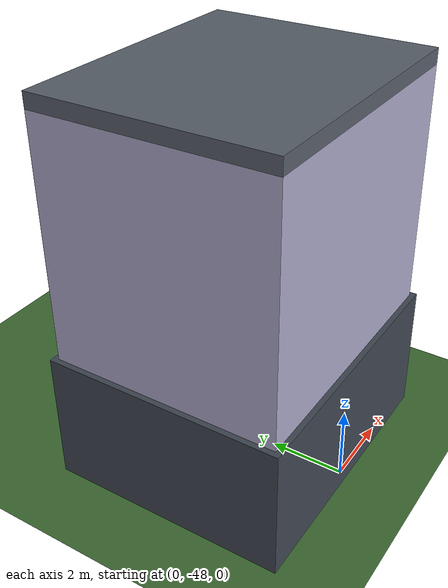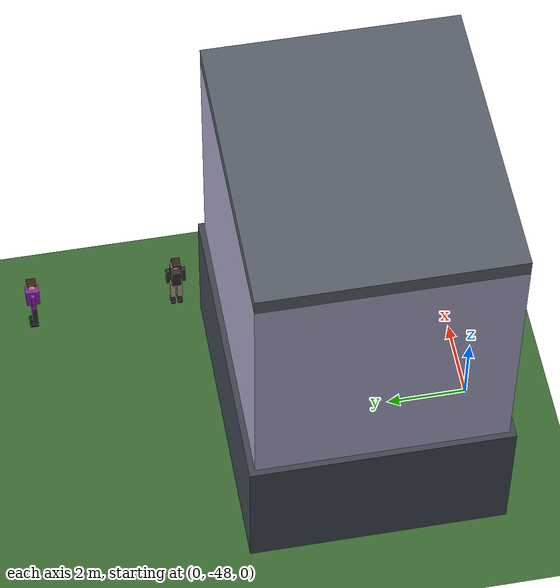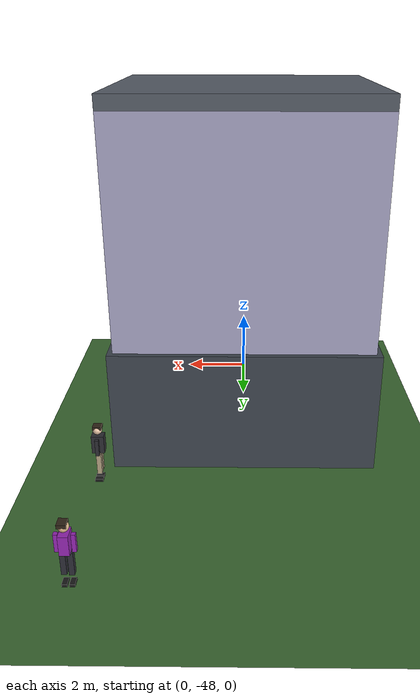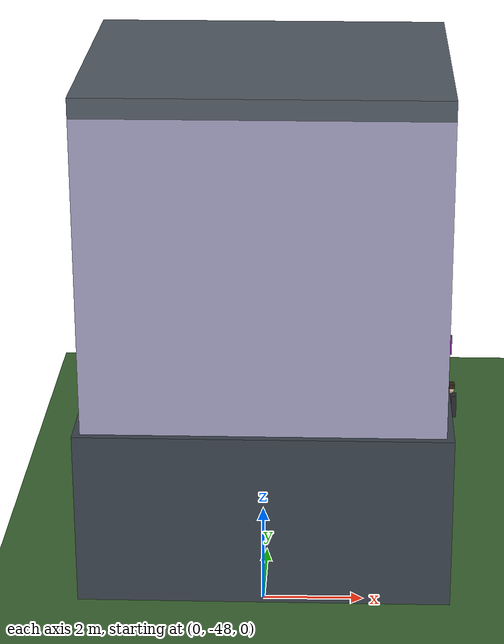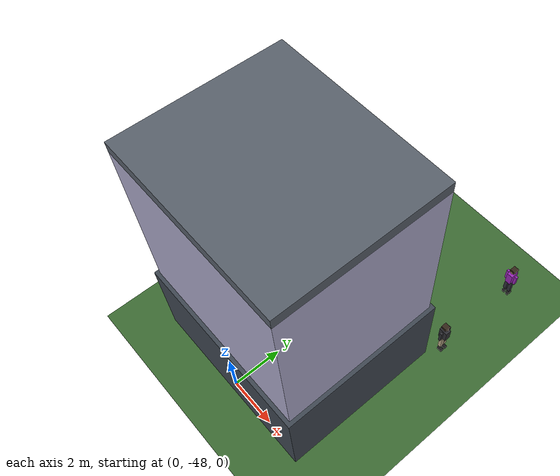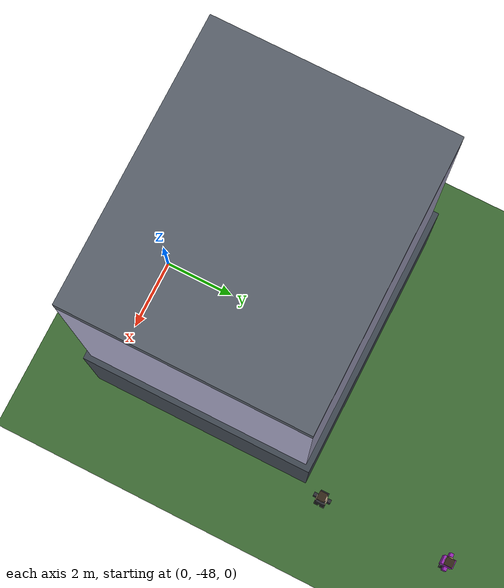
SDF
<sdf version="1.7">
 <world name="city_world">
  <model name="ground_plane">
   <static>true</static>
   <link name="link">
    <collision name="collision">
     <geometry><plane><normal>0 0 1</normal><size>300 300</size></plane></geometry>
     <surface><friction><ode><mu>100</mu><mu2>50</mu2></ode></friction></surface>
    </collision>
    <visual name="visual">
     <geometry><plane><normal>0 0 1</normal><size>300 300</size></plane></geometry>
     <material><ambient>0.24 0.42 0.20 1</ambient><diffuse>0.24 0.42 0.20 1</diffuse></material>
    </visual>
   </link>
  </model>
  <model name="pedestrian_4">
   <pose>4.0 -37.5 0.02 0 0 1.5708</pose>
   <static>true</static>
   <link name="link">
    <visual name="head">
     <pose>0 0 1.62 0 0 0</pose>
     <geometry><sphere><radius>0.13</radius></sphere></geometry>
     <material><ambient>0.88 0.72 0.55 1</ambient><diffuse>0.88 0.72 0.55 1</diffuse></material>
    </visual>
    <visual name="cap">
     <pose>0 -0.02 1.70 0 0 0</pose>
     <geometry><box><size>0.24 0.22 0.10</size></box></geometry>
     <material><ambient>0.2 0.15 0.1 1</ambient><diffuse>0.2 0.15 0.1 1</diffuse></material>
    </visual>
    <visual name="torso">
     <pose>0 0 1.20 0 0 0</pose>
     <geometry><box><size>0.34 0.24 0.52</size></box></geometry>
     <material><ambient>0.60 0.15 0.72 1</ambient><diffuse>0.60 0.15 0.72 1</diffuse></material>
    </visual>
    <visual name="arm_l">
     <pose>0 0.20 1.18 0 0 0</pose>
     <geometry><box><size>0.10 0.10 0.48</size></box></geometry>
     <material><ambient>0.60 0.15 0.72 1</ambient><diffuse>0.60 0.15 0.72 1</diffuse></material>
    </visual>
    <visual name="arm_r">
     <pose>0 -0.20 1.18 0 0 0</pose>
     <geometry><box><size>0.10 0.10 0.48</size></box></geometry>
     <material><ambient>0.60 0.15 0.72 1</ambient><diffuse>0.60 0.15 0.72 1</diffuse></material>
    </visual>
    <visual name="leg_l">
     <pose>0 0.09 0.60 0 0 0</pose>
     <geometry><box><size>0.13 0.13 0.62</size></box></geometry>
     <material><ambient>0.18 0.18 0.22 1</ambient><diffuse>0.18 0.18 0.22 1</diffuse></material>
    </visual>
    <visual name="leg_r">
     <pose>0 -0.09 0.60 0 0 0</pose>
     <geometry><box><size>0.13 0.13 0.62</size></box></geometry>
     <material><ambient>0.18 0.18 0.22 1</ambient><diffuse>0.18 0.18 0.22 1</diffuse></material>
    </visual>
    <visual name="shoe_l">
     <pose>0.04 0.09 0.05 0 0 0</pose>
     <geometry><box><size>0.22 0.13 0.08</size></box></geometry>
     <material><ambient>0.1 0.1 0.1 1</ambient><diffuse>0.1 0.1 0.1 1</diffuse></material>
    </visual>
    <visual name="shoe_r">
     <pose>0.04 -0.09 0.05 0 0 0</pose>
     <geometry><box><size>0.22 0.13 0.08</size></box></geometry>
     <material><ambient>0.1 0.1 0.1 1</ambient><diffuse>0.1 0.1 0.1 1</diffuse></material>
    </visual>
   </link>
  </model>
  <model name="pedestrian_14">
   <pose>4.0 -41.2 0.04 0 0 0.0000</pose>
   <static>true</static>
   <link name="link">
    <visual name="head">
     <pose>0 0 1.62 0 0 0</pose>
     <geometry><sphere><radius>0.13</radius></sphere></geometry>
     <material><ambient>0.94 0.80 0.68 1</ambient><diffuse>0.94 0.80 0.68 1</diffuse></material>
    </visual>
    <visual name="cap">
     <pose>0 -0.02 1.70 0 0 0</pose>
     <geometry><box><size>0.24 0.22 0.10</size></box></geometry>
     <material><ambient>0.2 0.15 0.1 1</ambient><diffuse>0.2 0.15 0.1 1</diffuse></material>
    </visual>
    <visual name="torso">
     <pose>0 0 1.20 0 0 0</pose>
     <geometry><box><size>0.34 0.24 0.52</size></box></geometry>
     <material><ambient>0.18 0.18 0.20 1</ambient><diffuse>0.18 0.18 0.20 1</diffuse></material>
    </visual>
    <visual name="arm_l">
     <pose>0 0.20 1.18 0 0 0</pose>
     <geometry><box><size>0.10 0.10 0.48</size></box></geometry>
     <material><ambient>0.18 0.18 0.20 1</ambient><diffuse>0.18 0.18 0.20 1</diffuse></material>
    </visual>
    <visual name="arm_r">
     <pose>0 -0.20 1.18 0 0 0</pose>
     <geometry><box><size>0.10 0.10 0.48</size></box></geometry>
     <material><ambient>0.18 0.18 0.20 1</ambient><diffuse>0.18 0.18 0.20 1</diffuse></material>
    </visual>
    <visual name="leg_l">
     <pose>0 0.09 0.60 0 0 0</pose>
     <geometry><box><size>0.13 0.13 0.62</size></box></geometry>
     <material><ambient>0.72 0.65 0.52 1</ambient><diffuse>0.72 0.65 0.52 1</diffuse></material>
    </visual>
    <visual name="leg_r">
     <pose>0 -0.09 0.60 0 0 0</pose>
     <geometry><box><size>0.13 0.13 0.62</size></box></geometry>
     <material><ambient>0.72 0.65 0.52 1</ambient><diffuse>0.72 0.65 0.52 1</diffuse></material>
    </visual>
    <visual name="shoe_l">
     <pose>0.04 0.09 0.05 0 0 0</pose>
     <geometry><box><size>0.22 0.13 0.08</size></box></geometry>
     <material><ambient>0.1 0.1 0.1 1</ambient><diffuse>0.1 0.1 0.1 1</diffuse></material>
    </visual>
    <visual name="shoe_r">
     <pose>0.04 -0.09 0.05 0 0 0</pose>
     <geometry><box><size>0.22 0.13 0.08</size></box></geometry>
     <material><ambient>0.1 0.1 0.1 1</ambient><diffuse>0.1 0.1 0.1 1</diffuse></material>
    </visual>
   </link>
  </model>
  <model name="building_15">
   <pose>0.0 -45.0 5.008578441919153 0 0 0</pose>
   <static>true</static>
   <link name="link">
    <collision name="collision"><geometry><box><size>7.20 6.12 10.02</size></box></geometry></collision>
    <visual name="tower">
     <geometry><box><size>7.20 6.12 10.02</size></box></geometry>
     <material>
      <ambient>0.68 0.67 0.80 1</ambient>
      <diffuse>0.68 0.67 0.80 1</diffuse>
      <specular>0.3 0.3 0.3 1</specular>
     </material>
    </visual>
    <visual name="lobby">
     <pose>0 0 -3.21 0 0 0</pose>
     <geometry><box><size>7.50 6.42 3.6</size></box></geometry>
     <material><ambient>0.25 0.28 0.32 1</ambient><diffuse>0.25 0.28 0.32 1</diffuse></material>
    </visual>
    <visual name="parapet">
     <pose>0 0 5.21 0 0 0</pose>
     <geometry><box><size>7.20 6.12 0.4</size></box></geometry>
     <material><ambient>0.35 0.38 0.42 1</ambient><diffuse>0.35 0.38 0.42 1</diffuse></material>
    </visual>
   </link>
  </model>
 </world>
</sdf>
